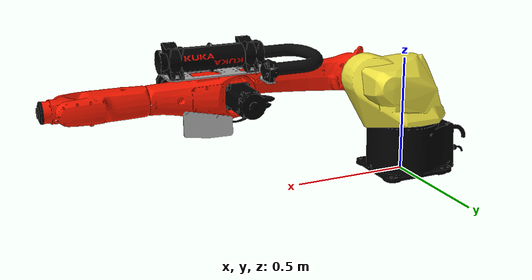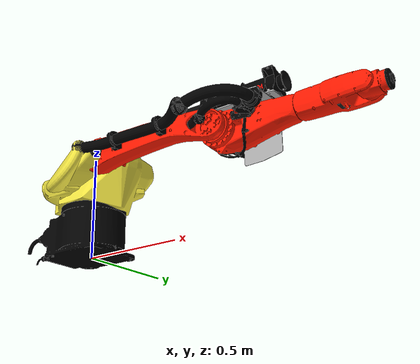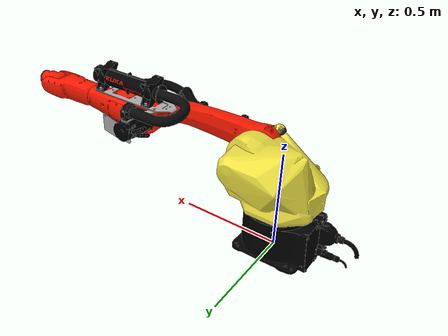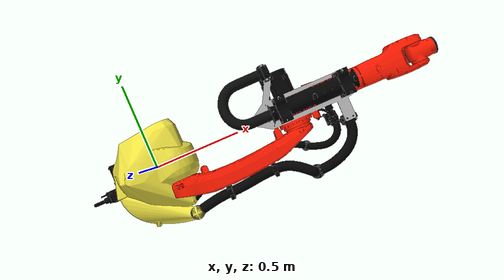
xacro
<?xml version="1.0" encoding="UTF-8"?>
<robot xmlns:xacro="http://ros.org/wiki/xacro" name="kr10_r1440_2">
    <!-- Import macro files  -->
  <xacro:include filename="$(find kuka_cybertech_support)/urdf/kr10_r1440_2_macro.xacro"/>
  <xacro:include filename="$(find kuka_cybertech_support)/urdf/kr_cybertech_ros2_control_macro.xacro"/>
  <!-- Read additional arguments  -->
  <xacro:arg name="driver_version" default="eki_rsi"/>
  <xacro:arg name="mode" default="hardware"/>
  <xacro:arg name="use_gpio" default="false"/>
  <xacro:arg name="roundtrip_time" default="0"/>
  <xacro:arg name="client_ip" default="0.0.0.0"/>
  <xacro:arg name="client_port" default="59152"/>
  <xacro:arg name="controller_ip" default="0.0.0.0"/>
  <xacro:arg name="verify_robot_model" default="true"/>
  <xacro:arg name="prefix" default=""/>
  <xacro:arg name="x" default="0"/>
  <xacro:arg name="y" default="0"/>
  <xacro:arg name="z" default="0"/>
  <xacro:arg name="roll" default="0"/>
  <xacro:arg name="pitch" default="0"/>
  <xacro:arg name="yaw" default="0"/>
  <xacro:kuka_cybertech_ros2_control name="$(arg prefix)kr10_r1440_2" driver_version="$(arg driver_version)" client_ip="$(arg client_ip)" client_port="$(arg client_port)" controller_ip="$(arg controller_ip)" prefix="$(arg prefix)" mode="$(arg mode)" use_gpio="$(arg use_gpio)" roundtrip_time="$(arg roundtrip_time)" verify_robot_model="$(arg verify_robot_model)"/>
  <xacro:kuka_kr10_r1440_2_robot prefix="$(arg prefix)" package_name="kuka_cybertech_support">
    <origin xyz="$(arg x) $(arg y) $(arg z)" rpy="$(arg roll) $(arg pitch) $(arg yaw)"/>
  </xacro:kuka_kr10_r1440_2_robot>
</robot>

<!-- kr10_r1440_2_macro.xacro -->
<robot xmlns:xacro="http://www.ros.org/wiki/xacro" name="kr10_r1440_2">
  <xacro:macro name="kuka_kr10_r1440_2_robot" params="prefix package_name *origin">
    <link name="${prefix}base"/>
    <link name="${prefix}base_link">
      <collision>
        <geometry>
          <mesh filename="package://${package_name}/meshes/kr10_r1440_2/collision/base_link.stl"/>
        </geometry>
        <origin rpy="0.0 -0.0 0.0" xyz="0.0 0.0 0.0"/>
      </collision>
      <inertial>
        <inertia ixx="0.6349360955496035" ixy="0.0" ixz="0.0" iyy="0.5743276271613774" iyz="0.0" izz="0.7973529211340298"/>
        <mass value="4.1543E1"/>
        <origin rpy="1.5765789941792376 -1.1449983272469337 -3.008229934212504" xyz="-0.03911272657246708 -0.002877449871217773 0.1271042844955829"/>
      </inertial>
      <visual>
        <geometry>
          <mesh filename="package://${package_name}/meshes/kr10_r1440_2/visual/base_link.dae"/>
        </geometry>
        <origin rpy="0.0 -0.0 0.0" xyz="0.0 0.0 0.0"/>
      </visual>
    </link>
    <link name="${prefix}flange"/>
    <link name="${prefix}link_1">
      <collision>
        <geometry>
          <mesh filename="package://${package_name}/meshes/kr10_r1440_2/collision/link_1.stl"/>
        </geometry>
        <origin rpy="-3.141592653589793 0.0 -0.0" xyz="0.0 -3.116726103830014e-17 0.2545"/>
      </collision>
      <inertial>
        <inertia ixx="1.2727085924172525" ixy="0.0" ixz="0.0" iyy="0.8102052539070776" iyz="0.0" izz="1.4829639282436173"/>
        <mass value="6.246E1"/>
        <origin rpy="-2.6350253172536684 -0.01538114211387394 1.4893382422375272" xyz="0.05643627921869998 -0.005051112391930836 -0.09277565609990396"/>
      </inertial>
      <visual>
        <geometry>
          <mesh filename="package://${package_name}/meshes/kr10_r1440_2/visual/link_1.dae"/>
        </geometry>
        <origin rpy="-3.141592653589793 0.0 -0.0" xyz="0.0 -3.116726103830014e-17 0.2545"/>
      </visual>
    </link>
    <link name="${prefix}link_2">
      <collision>
        <geometry>
          <mesh filename="package://${package_name}/meshes/kr10_r1440_2/collision/link_2.stl"/>
        </geometry>
        <origin rpy="1.5707963267948968 -0.0 1.5707963267948966" xyz="-0.42500000000000004 -0.16999999999999998 0.06800000000000006"/>
      </collision>
      <inertial>
        <inertia ixx="2.2503131948677018" ixy="0.0" ixz="0.0" iyy="0.16814676004395757" iyz="0.0" izz="2.3069492795417217"/>
        <mass value="3.2790000000000006E1"/>
        <origin rpy="-0.3217957126277276 -1.5455139002983547 -1.2414721322121967" xyz="0.24554812442817928 -1.2150045745654182E-4 -0.051557290637389445"/>
      </inertial>
      <visual>
        <geometry>
          <mesh filename="package://${package_name}/meshes/kr10_r1440_2/visual/link_2.dae"/>
        </geometry>
        <origin rpy="1.5707963267948968 -0.0 1.5707963267948966" xyz="-0.42500000000000004 -0.16999999999999998 0.06800000000000006"/>
      </visual>
    </link>
    <link name="${prefix}link_3">
      <collision>
        <geometry>
          <mesh filename="package://${package_name}/meshes/kr10_r1440_2/collision/link_3.stl"/>
        </geometry>
        <origin rpy="1.5707963267948968 -0.0 -0.0" xyz="-0.17000000000000004 1.035 0.06450000000000007"/>
      </collision>
      <inertial>
        <inertia ixx="0.36915036811955576" ixy="0.0" ixz="0.0" iyy="0.15901742621606016" iyz="0.0" izz="0.41789942189238766"/>
        <mass value="2.5055999999999997E1"/>
        <origin rpy="-2.657283660205656 -1.4994510539238413 1.0751334732947653" xyz="0.08403184466794382 -0.005554282407407408 0.06715100295338443"/>
      </inertial>
      <visual>
        <geometry>
          <mesh filename="package://${package_name}/meshes/kr10_r1440_2/visual/link_3.dae"/>
        </geometry>
        <origin rpy="1.5707963267948968 -0.0 -0.0" xyz="-0.17000000000000004 1.035 0.06450000000000007"/>
      </visual>
    </link>
    <link name="${prefix}link_4">
      <collision>
        <geometry>
          <mesh filename="package://${package_name}/meshes/kr10_r1440_2/collision/link_4.stl"/>
        </geometry>
        <origin rpy="1.8369701987210297e-16 1.5707963267948966 0.0" xyz="-1.055 2.296675523157947e-17 0.509"/>
      </collision>
      <inertial>
        <inertia ixx="0.014467953770937531" ixy="0.0" ixz="0.0" iyy="0.09053994505263632" iyz="0.0" izz="0.09325322176172647"/>
        <mass value="6.197E0"/>
        <origin rpy="1.2752490440413624 -1.4976832008941978 -1.2733489384522945" xyz="9.183556559625626E-4 0.01311994513474262 -0.14941500726157822"/>
      </inertial>
      <visual>
        <geometry>
          <mesh filename="package://${package_name}/meshes/kr10_r1440_2/visual/link_4.dae"/>
        </geometry>
        <origin rpy="1.8369701987210297e-16 1.5707963267948966 0.0" xyz="-1.055 2.296675523157947e-17 0.509"/>
      </visual>
    </link>
    <link name="${prefix}link_5">
      <collision>
        <geometry>
          <mesh filename="package://${package_name}/meshes/kr10_r1440_2/collision/link_5.stl"/>
        </geometry>
        <origin rpy="1.5707963267948968 -3.749399456654644e-33 -6.123233995736766e-17" xyz="-0.83 1.055 -0.050499999999999996"/>
      </collision>
      <inertial>
        <inertia ixx="0.0027972301782862967" ixy="0.0" ixz="0.0" iyy="0.0019523309112006039" iyz="0.0" izz="0.003131717836428019"/>
        <mass value="1.8900000000000001E0"/>
        <origin rpy="-1.455829809534117 -1.014124837645209 -0.1371524630575122" xyz="0.015893756613756613 8.735449735449736E-4 -0.03832762962962963"/>
      </inertial>
      <visual>
        <geometry>
          <mesh filename="package://${package_name}/meshes/kr10_r1440_2/visual/link_5.dae"/>
        </geometry>
        <origin rpy="1.5707963267948968 -3.749399456654644e-33 -6.123233995736766e-17" xyz="-0.83 1.055 -0.050499999999999996"/>
      </visual>
    </link>
    <link name="${prefix}link_6">
      <collision>
        <geometry>
          <mesh filename="package://${package_name}/meshes/kr10_r1440_2/collision/link_6.stl"/>
        </geometry>
        <origin rpy="1.2246467991473532e-16 1.5707963267948966 0.0" xyz="-1.055 -5.1789269048895744e-17 0.9015"/>
      </collision>
      <inertial>
        <inertia ixx="1.8743637194570256E-4" ixy="0.0" ixz="0.0" iyy="1.8743637194570256E-4" iyz="0.0" izz="3.0349E-4"/>
        <mass value="7.33E-1"/>
        <origin rpy="0.0 -0.0 0.0" xyz="0.0 0.0 -0.011913124147339702"/>
      </inertial>
      <visual>
        <geometry>
          <mesh filename="package://${package_name}/meshes/kr10_r1440_2/visual/link_6.dae"/>
        </geometry>
        <origin rpy="1.2246467991473532e-16 1.5707963267948966 0.0" xyz="-1.055 -5.1789269048895744e-17 0.9015"/>
      </visual>
    </link>
    <link name="${prefix}tool0"/>
    <link name="world"/>
    <joint name="${prefix}base_link-base" type="fixed">
      <child link="${prefix}base"/>
      <parent link="${prefix}base_link"/>
    </joint>
    <joint name="${prefix}joint_1" type="revolute">
      <axis xyz="0.0 0.0 1.0"/>
      <child link="${prefix}link_1"/>
      <limit effort="1.188E3" lower="-2.967059725E0" upper="2.967059725E0" velocity="2.79252680319093E0"/>
      <origin rpy="3.141592653589793 -0.0 0.0" xyz="0.0 0.0 0.2545"/>
      <parent link="${prefix}base_link"/>
    </joint>
    <joint name="${prefix}joint_2" type="revolute">
      <axis xyz="0.0 0.0 1.0"/>
      <child link="${prefix}link_2"/>
      <limit effort="1.0186318661867707E3" lower="-3.2288591125E0" upper="1.1344640125E0" velocity="2.60054058547155E0"/>
      <origin rpy="1.5707963267948966 -0.0 0.0" xyz="0.17 0.068 -0.1705"/>
      <parent link="${prefix}link_1"/>
    </joint>
    <joint name="${prefix}joint_3" type="revolute">
      <axis xyz="0.0 0.0 1.0"/>
      <child link="${prefix}link_3"/>
      <limit effort="2.4088141499116082E2" lower="-2.3911010725E0" upper="2.8448866775E0" velocity="4.71238898038469E0"/>
      <origin rpy="0.0 -0.0 0.0" xyz="0.61 0.0 0.0035"/>
      <parent link="${prefix}link_2"/>
    </joint>
    <joint name="${prefix}joint_4" type="revolute">
      <axis xyz="0.0 0.0 1.0"/>
      <child link="${prefix}link_4"/>
      <limit effort="4.4055046660247669E1" lower="-3.2288591125E0" upper="3.2288591125E0" velocity="6.6497044500984E0"/>
      <origin rpy="1.5707963267948966 -0.0 -1.5707963267948966" xyz="0.339 -0.02 0.0645"/>
      <parent link="${prefix}link_3"/>
    </joint>
    <joint name="${prefix}joint_5" type="revolute">
      <axis xyz="0.0 0.0 1.0"/>
      <child link="${prefix}link_5"/>
      <limit effort="4.4162629900667383E1" lower="-2.0943951E0" upper="2.0943951E0" velocity="5.42797397370236E0"/>
      <origin rpy="0.0 1.5707963267948966 1.5707963267948966" xyz="0.0 0.0505 -0.321"/>
      <parent link="${prefix}link_4"/>
    </joint>
    <joint name="${prefix}joint_6" type="revolute">
      <axis xyz="0.0 0.0 1.0"/>
      <child link="${prefix}link_6"/>
      <limit effort="3.895867E1" lower="-6.108652375E0" upper="6.108652375E0" velocity="7.55727566113545E0"/>
      <origin rpy="1.5707963267948966 -0.0 -1.5707963267948966" xyz="0.07150000000000001 0.0 -0.0505"/>
      <parent link="${prefix}link_5"/>
    </joint>
    <joint name="${prefix}link6-flange" type="fixed">
      <child link="${prefix}flange"/>
      <origin rpy="0.0 1.5707963267948966 0.0" xyz="0.0 0.0 -0.0285"/>
      <parent link="${prefix}link_6"/>
    </joint>
    <joint name="${prefix}link6-tool0" type="fixed">
      <child link="${prefix}tool0"/>
      <origin rpy="3.141592653589793 1.2246467991473532E-16 3.141592653589793" xyz="0.0 0.0 -0.0285"/>
      <parent link="${prefix}link_6"/>
    </joint>
    <joint name="${prefix}world-base_link" type="fixed">
      <child link="${prefix}base_link"/>
      <parent link="world"/>
      <xacro:insert_block name="origin"/>
    </joint>
  </xacro:macro>
</robot>
